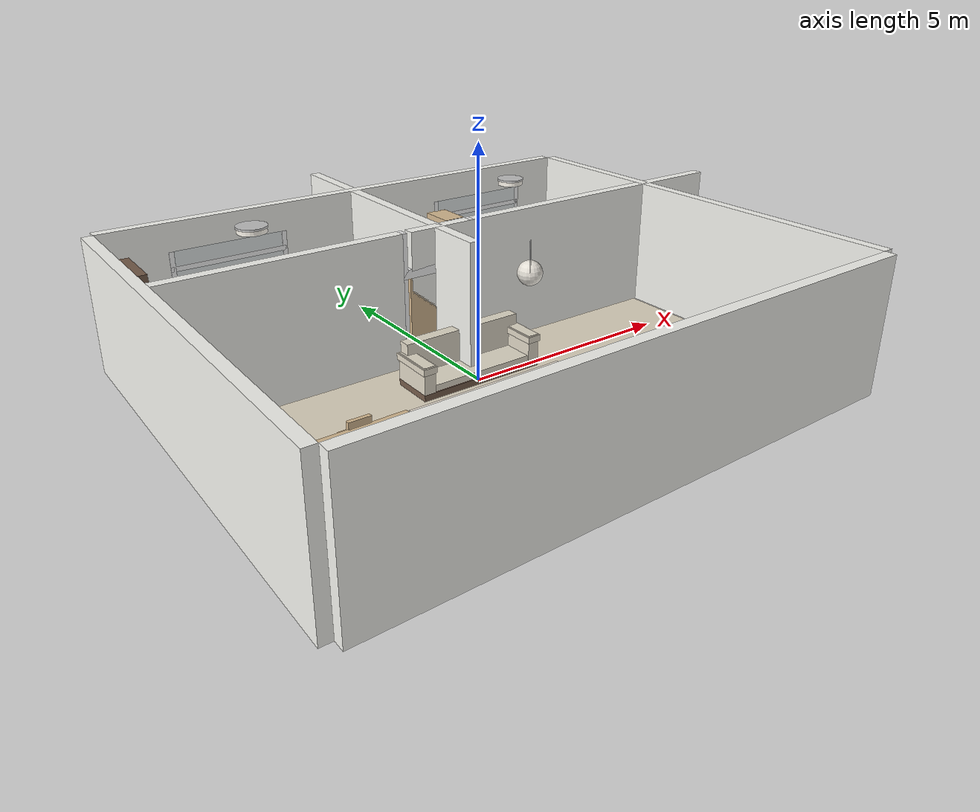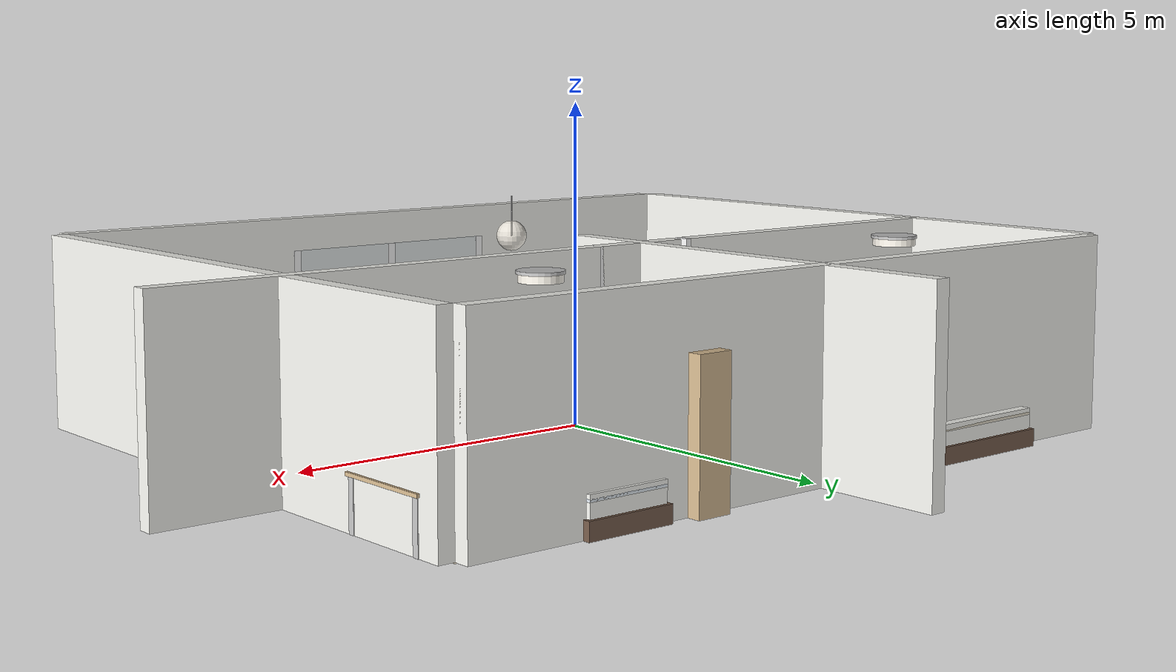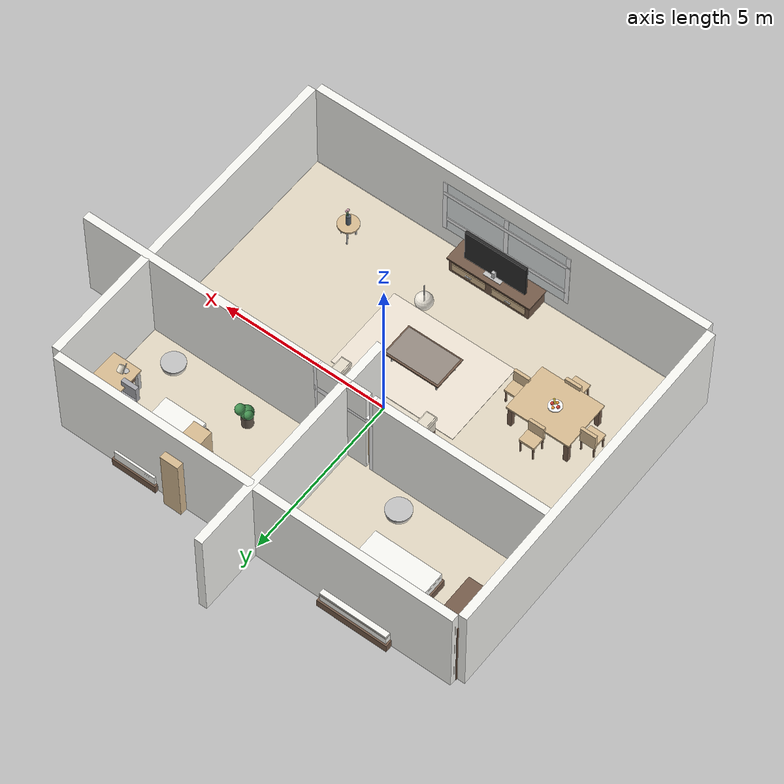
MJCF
<mujoco model="modern_apartment_optimized">
  <compiler angle="degree" coordinate="local" inertiafromgeom="true"/>

  <option timestep="0.005" gravity="0 0 -9.81">
    <flag warmstart="enable"/>
  </option>

  <asset>
    <!-- 现代简约风格材质 -->
    <material name="floor_wood" rgba="0.88 0.84 0.76 1" specular="0.4" shininess="0.3"/>
    <material name="wall_white" rgba="0.97 0.97 0.95 1" specular="0.1" shininess="0.05"/>
    <material name="wallpaper_gray" rgba="0.85 0.85 0.87 1" specular="0.05" shininess="0.02"/>
    <material name="wallpaper_beige" rgba="0.92 0.89 0.84 1" specular="0.05" shininess="0.02"/>
    <material name="wood_natural" rgba="0.84 0.73 0.57 1" specular="0.2" shininess="0.15"/>
    <material name="wood_walnut" rgba="0.46 0.36 0.29 1" specular="0.25" shininess="0.2"/>
    <material name="fabric_beige" rgba="0.89 0.86 0.79 1" specular="0.04" shininess="0.02"/>
    <material name="fabric_gray" rgba="0.66 0.66 0.68 1" specular="0.04" shininess="0.02"/>
    <material name="metal_brushed" rgba="0.76 0.76 0.76 1" specular="0.7" shininess="0.4"/>
    <material name="glass_clear" rgba="0.86 0.93 0.96 0.35" specular="0.9" shininess="0.8"/>
    <material name="black_matte" rgba="0.16 0.16 0.16 1" specular="0.1" shininess="0.05"/>
    <material name="white_matte" rgba="0.99 0.99 0.99 1" specular="0.1" shininess="0.05"/>
    <material name="carpet_cream" rgba="0.93 0.89 0.83 1" specular="0.02" shininess="0.01"/>
    <material name="cushion_linen" rgba="0.92 0.90 0.86 1" specular="0.03" shininess="0.01"/>
  </asset>

  <worldbody>
    <!-- 照明 -->
    <light directional="true" diffuse="0.75 0.75 0.75" specular="0.3 0.3 0.3" pos="0 0 10" dir="0 0 -1"/>
    <light directional="true" diffuse="0.45 0.45 0.45" specular="0.2 0.2 0.2" pos="6 6 8" dir="-1 -1 -1"/>
    <light directional="true" diffuse="0.35 0.35 0.35" specular="0.15 0.15 0.15" pos="-6 -6 8" dir="1 1 -1"/>

    <!-- 地板 (12m x 10m) -->
    <geom name="floor" type="plane" size="6 5 0.1" pos="0 0 0" material="floor_wood"/>

    <!-- ========== 外墙 ========== -->
    <!-- 北墙 -->
    <geom name="wall_north" type="box" size="6 0.12 1.5" pos="0 5.12 1.5" material="wall_white"/>

    <!-- 南墙 -->
    <geom name="wall_south" type="box" size="6 0.12 1.5" pos="0 -5.12 1.5" material="wall_white"/>

    <!-- 东墙 -->
    <geom name="wall_east" type="box" size="0.12 5 1.5" pos="6.12 0 1.5" material="wall_white"/>

    <!-- 西墙 -->
    <geom name="wall_west" type="box" size="0.12 5 1.5" pos="-6.12 0 1.5" material="wall_white"/>

    <!-- ========== 内墙（分隔客厅和卧室）========== -->
    <!-- 水平分隔墙 - 西段（卧室1左侧到门1） -->
    <geom name="wall_h_west" type="box" size="2.6 0.12 1.5" pos="-3.5 1.5 1.5" material="wall_white"/>

    <!-- 门1框架（卧室1门） -->
    <geom name="door1_frame_left" type="box" size="0.05 0.12 1.5" pos="-0.85 1.5 1.5" material="white_matte"/>
    <geom name="door1_frame_right" type="box" size="0.05 0.12 1.5" pos="0.85 1.5 1.5" material="white_matte"/>
    <geom name="door1_frame_top" type="box" size="0.9 0.12 0.1" pos="0 1.5 2.1" material="white_matte"/>
    <geom name="door1_panel" type="box" size="0.75 0.08 0.95" pos="0 1.46 1.05" material="wood_natural"/>
    <geom name="door1_handle" type="cylinder" size="0.02 0.08" pos="0.6 1.38 1.05" material="metal_brushed" euler="0 90 0"/>

    <!-- 水平分隔墙 - 东段（门1到东墙） -->
    <geom name="wall_h_east" type="box" size="4.4 0.12 1.5" pos="3.7 1.5 1.5" material="wall_white"/>

    <!-- 卧室间的垂直分隔墙（仅在北部） -->
    <geom name="wall_v_bedroom" type="box" size="0.12 3.5 1.5" pos="0 3.62 1.5" material="wall_white"/>

    <!-- ========== 壁纸装饰 ========== -->
    <!-- 客厅南墙壁纸 -->
    <geom name="wallpaper_living_south" type="box" size="5.5 0.01 1.3" pos="0 -5.11 1.4" material="wallpaper_gray"/>

    <!-- 卧室1北墙壁纸 -->
    <geom name="wallpaper_bed1_north" type="box" size="2.8 0.01 1.2" pos="-3.2 5.11 1.4" material="wallpaper_beige"/>

    <!-- 卧室2北墙壁纸 -->
    <geom name="wallpaper_bed2_north" type="box" size="2.8 0.01 1.2" pos="3.2 5.11 1.4" material="wallpaper_beige"/>

    <!-- ========== 客厅区域 ========== -->

    <!-- 现代简约沙发（面向南，朝向电视） -->
    <body name="sofa" pos="0 0.3 0">
      <!-- 沙发底座框架 -->
      <geom type="box" size="1.45 0.48 0.07" pos="0 0 0.07" material="wood_walnut"/>
      <!-- 沙发薄坐垫 -->
      <geom type="box" size="1.40 0.45 0.07" pos="0 0 0.21" material="fabric_beige"/>
      <!-- 沙发靠背 -->
      <geom type="box" size="1.40 0.13 0.42" pos="0 0.35 0.56" material="fabric_beige"/>
      <!-- 靠背软包 -->
      <geom type="box" size="1.35 0.09 0.37" pos="0 0.39 0.56" material="fabric_gray"/>
      <!-- 左扶手 -->
      <geom type="box" size="0.13 0.48 0.30" pos="-1.32 0 0.44" material="fabric_beige"/>
      <geom type="box" size="0.16 0.51 0.07" pos="-1.32 0 0.65" material="fabric_beige"/>
      <!-- 右扶手 -->
      <geom type="box" size="0.13 0.48 0.30" pos="1.32 0 0.44" material="fabric_beige"/>
      <geom type="box" size="0.16 0.51 0.07" pos="1.32 0 0.65" material="fabric_beige"/>
      <!-- 薄抱枕 -->
      <geom type="box" size="0.30 0.07 0.30" pos="-0.75 0.38 0.36" material="cushion_linen"/>
      <geom type="box" size="0.30 0.07 0.30" pos="0 0.38 0.36" material="cushion_linen"/>
      <geom type="box" size="0.30 0.07 0.30" pos="0.75 0.38 0.36" material="cushion_linen"/>
    </body>

    <!-- 地毯（在茶几下） -->
    <geom name="carpet" type="box" size="1.9 1.3 0.008" pos="0 -1.6 0.008" material="carpet_cream"/>

    <!-- 现代茶几 -->
    <body name="coffee_table" pos="0 -1.6 0">
      <!-- 桌面 -->
      <geom type="box" size="0.85 0.52 0.025" pos="0 0 0.40" material="wood_walnut"/>
      <!-- 玻璃层 -->
      <geom type="box" size="0.80 0.47 0.01" pos="0 0 0.445" material="glass_clear"/>
      <!-- 金属腿 -->
      <geom type="cylinder" size="0.025 0.18" pos="-0.70 -0.37 0.18" material="metal_brushed"/>
      <geom type="cylinder" size="0.025 0.18" pos="0.70 -0.37 0.18" material="metal_brushed"/>
      <geom type="cylinder" size="0.025 0.18" pos="-0.70 0.37 0.18" material="metal_brushed"/>
      <geom type="cylinder" size="0.025 0.18" pos="0.70 0.37 0.18" material="metal_brushed"/>
    </body>

    <!-- 电视柜（靠南墙，留出间隙不重合） -->
    <body name="tv_stand" pos="0 -4.7 0">
      <!-- 柜体 -->
      <geom type="box" size="1.25 0.38 0.24" pos="0 0 0.24" material="wood_walnut"/>
      <!-- 台面 -->
      <geom type="box" size="1.30 0.42 0.025" pos="0 0 0.505" material="wood_walnut"/>
      <!-- 抽屉面板 -->
      <geom type="box" size="0.52 0.02 0.13" pos="-0.62 0.38 0.24" material="wood_natural"/>
      <geom type="box" size="0.52 0.02 0.13" pos="0.62 0.38 0.24" material="wood_natural"/>
      <!-- 金属拉手 -->
      <geom type="box" size="0.09 0.015 0.015" pos="-0.62 0.42 0.24" material="metal_brushed"/>
      <geom type="box" size="0.09 0.015 0.015" pos="0.62 0.42 0.24" material="metal_brushed"/>
    </body>

    <!-- 现代电视 -->
    <body name="tv" pos="0 -4.6 0.53">
      <!-- 电视屏幕 -->
      <geom type="box" size="0.95 0.04 0.54" pos="0 0 0.54" material="black_matte"/>
      <!-- 显示区域 -->
      <geom type="box" size="0.90 0.02 0.50" pos="0 -0.02 0.54" rgba="0.12 0.14 0.17 1"/>
      <!-- 底座 -->
      <geom type="box" size="0.27 0.17 0.02" pos="0 0 -0.01" material="metal_brushed"/>
      <geom type="box" size="0.045 0.12 0.11" pos="0 0 0.10" material="metal_brushed"/>
    </body>

    <!-- 餐桌（客厅西侧空余空间） -->
    <body name="dining_table" pos="-3.6 -2.2 0">
      <!-- 桌面 -->
      <geom type="box" size="0.95 0.75 0.032" pos="0 0 0.75" material="wood_natural"/>
      <!-- 桌腿 -->
      <geom type="box" size="0.065 0.065 0.36" pos="-0.85 -0.65 0.36" material="wood_walnut"/>
      <geom type="box" size="0.065 0.065 0.36" pos="0.85 -0.65 0.36" material="wood_walnut"/>
      <geom type="box" size="0.065 0.065 0.36" pos="-0.85 0.65 0.36" material="wood_walnut"/>
      <geom type="box" size="0.065 0.065 0.36" pos="0.85 0.65 0.36" material="wood_walnut"/>
    </body>

    <!-- 餐椅1（桌子西侧） -->
    <body name="chair1" pos="-4.75 -2.2 0">
      <geom type="box" size="0.23 0.23 0.04" pos="0 0 0.48" material="wood_natural"/>
      <geom type="box" size="0.23 0.045 0.26" pos="0 0.19 0.66" material="wood_natural"/>
      <geom type="cylinder" size="0.026 0.23" pos="-0.19 -0.19 0.23" material="wood_walnut"/>
      <geom type="cylinder" size="0.026 0.23" pos="0.19 -0.19 0.23" material="wood_walnut"/>
      <geom type="cylinder" size="0.026 0.23" pos="-0.19 0.19 0.23" material="wood_walnut"/>
      <geom type="cylinder" size="0.026 0.23" pos="0.19 0.19 0.23" material="wood_walnut"/>
    </body>

    <!-- 餐椅2（桌子东侧） -->
    <body name="chair2" pos="-2.45 -2.2 0">
      <geom type="box" size="0.23 0.23 0.04" pos="0 0 0.48" material="wood_natural"/>
      <geom type="box" size="0.23 0.045 0.26" pos="0 -0.19 0.66" material="wood_natural"/>
      <geom type="cylinder" size="0.026 0.23" pos="-0.19 -0.19 0.23" material="wood_walnut"/>
      <geom type="cylinder" size="0.026 0.23" pos="0.19 -0.19 0.23" material="wood_walnut"/>
      <geom type="cylinder" size="0.026 0.23" pos="-0.19 0.19 0.23" material="wood_walnut"/>
      <geom type="cylinder" size="0.026 0.23" pos="0.19 0.19 0.23" material="wood_walnut"/>
    </body>

    <!-- 餐椅3（桌子南侧） -->
    <body name="chair3" pos="-3.6 -3.15 0">
      <geom type="box" size="0.23 0.23 0.04" pos="0 0 0.48" material="wood_natural"/>
      <geom type="box" size="0.23 0.045 0.26" pos="0 0.19 0.66" material="wood_natural"/>
      <geom type="cylinder" size="0.026 0.23" pos="-0.19 -0.19 0.23" material="wood_walnut"/>
      <geom type="cylinder" size="0.026 0.23" pos="0.19 -0.19 0.23" material="wood_walnut"/>
      <geom type="cylinder" size="0.026 0.23" pos="-0.19 0.19 0.23" material="wood_walnut"/>
      <geom type="cylinder" size="0.026 0.23" pos="0.19 0.19 0.23" material="wood_walnut"/>
    </body>

    <!-- 餐椅4（桌子北侧） -->
    <body name="chair4" pos="-3.6 -1.25 0">
      <geom type="box" size="0.23 0.23 0.04" pos="0 0 0.48" material="wood_natural"/>
      <geom type="box" size="0.23 0.045 0.26" pos="0 -0.19 0.66" material="wood_natural"/>
      <geom type="cylinder" size="0.026 0.23" pos="-0.19 -0.19 0.23" material="wood_walnut"/>
      <geom type="cylinder" size="0.026 0.23" pos="0.19 -0.19 0.23" material="wood_walnut"/>
      <geom type="cylinder" size="0.026 0.23" pos="-0.19 0.19 0.23" material="wood_walnut"/>
      <geom type="cylinder" size="0.026 0.23" pos="0.19 0.19 0.23" material="wood_walnut"/>
    </body>

    <!-- 餐桌上的水果盘 -->
    <body name="fruit_bowl" pos="-3.6 -2.2 0.782">
      <!-- 盘子 -->
      <geom type="cylinder" size="0.19 0.032" pos="0 0 0" material="white_matte"/>
      <!-- 苹果 -->
      <geom type="sphere" size="0.047" pos="-0.09 0 0.047" rgba="0.86 0.26 0.21 1"/>
      <geom type="sphere" size="0.047" pos="0.09 0 0.047" rgba="0.86 0.26 0.21 1"/>
      <!-- 橙子 -->
      <geom type="sphere" size="0.042" pos="0 -0.09 0.042" rgba="0.96 0.61 0.21 1"/>
      <geom type="sphere" size="0.042" pos="0 0.09 0.042" rgba="0.96 0.61 0.21 1"/>
      <!-- 香蕉 -->
      <geom type="capsule" size="0.026 0.065" pos="0.06 -0.06 0.09" rgba="0.96 0.86 0.31 1" euler="22 32 47"/>
    </body>

    <!-- 边几（客厅东侧） -->
    <body name="side_table" pos="3.9 -3.6 0">
      <!-- 桌面 -->
      <geom type="cylinder" size="0.30 0.026" pos="0 0 0.54" material="wood_natural"/>
      <!-- 金属腿（三脚） -->
      <geom type="cylinder" size="0.022 0.26" pos="0.22 0 0.26" material="metal_brushed" euler="5 0 0"/>
      <geom type="cylinder" size="0.022 0.26" pos="-0.11 0.19 0.26" material="metal_brushed" euler="5 0 120"/>
      <geom type="cylinder" size="0.022 0.26" pos="-0.11 -0.19 0.26" material="metal_brushed" euler="5 0 240"/>
    </body>

    <!-- 装饰花瓶（边几上） -->
    <body name="vase" pos="3.9 -3.6 0.566">
      <!-- 花瓶 -->
      <geom type="cylinder" size="0.065 0.16" pos="0 0 0.16" rgba="0.32 0.37 0.42 1"/>
      <!-- 花茎 -->
      <geom type="cylinder" size="0.009 0.13" pos="0 0 0.44" rgba="0.22 0.52 0.22 1"/>
      <geom type="cylinder" size="0.009 0.11" pos="0.035 0.025 0.42" rgba="0.22 0.52 0.22 1"/>
      <!-- 花朵 -->
      <geom type="sphere" size="0.038" pos="0 0 0.57" rgba="0.92 0.72 0.77 1"/>
      <geom type="sphere" size="0.032" pos="0.035 0.025 0.53" rgba="0.92 0.72 0.77 1"/>
    </body>

    <!-- ========== 卧室1 (西北区域) ========== -->

    <!-- 双人床（床头靠北墙） -->
    <body name="bed1" pos="-3.2 4.3 0">
      <!-- 床架 -->
      <geom type="box" size="1.05 1.15 0.13" pos="0 0 0.13" material="wood_walnut"/>
      <!-- 床垫 -->
      <geom type="box" size="1.00 1.10 0.19" pos="0 0 0.38" rgba="0.97 0.97 0.95 1"/>
      <!-- 床单 -->
      <geom type="box" size="1.00 1.10 0.02" pos="0 0 0.49" material="fabric_beige"/>
      <!-- 床头板（靠墙） -->
      <geom type="box" size="1.05 0.09 0.62" pos="0 0.67 0.74" material="wood_walnut"/>
      <geom type="box" size="1.00 0.13 0.52" pos="0 0.64 0.74" material="fabric_gray"/>
      <!-- 枕头 -->
      <geom type="box" size="0.32 0.19 0.09" pos="-0.48 0.45 0.56" rgba="0.99 0.99 0.99 1"/>
      <geom type="box" size="0.32 0.19 0.09" pos="0.48 0.45 0.56" rgba="0.99 0.99 0.99 1"/>
    </body>

    <!-- 床头柜1（左侧，紧靠床） -->
    <body name="nightstand1" pos="-4.45 4.3 0">
      <!-- 柜体 -->
      <geom type="box" size="0.32 0.35 0.30" pos="0 0 0.30" material="wood_natural"/>
      <!-- 台面 -->
      <geom type="box" size="0.34 0.37 0.026" pos="0 0 0.626" material="wood_walnut"/>
      <!-- 抽屉 -->
      <geom type="box" size="0.28 0.02 0.11" pos="0 0.35 0.37" material="wood_walnut"/>
      <geom type="box" size="0.06 0.012 0.012" pos="0 0.39 0.37" material="metal_brushed"/>
      <!-- 台灯 -->
      <geom type="cylinder" size="0.09 0.022" pos="0 0 0.67" material="metal_brushed"/>
      <geom type="cylinder" size="0.017 0.19" pos="0 0 0.88" material="metal_brushed"/>
      <geom type="sphere" size="0.11" pos="0 0 1.09" rgba="0.99 0.97 0.91 0.82"/>
    </body>

    <!-- 床头柜2（右侧，紧靠床） -->
    <body name="nightstand2" pos="-1.95 4.3 0">
      <geom type="box" size="0.32 0.35 0.30" pos="0 0 0.30" material="wood_natural"/>
      <geom type="box" size="0.34 0.37 0.026" pos="0 0 0.626" material="wood_walnut"/>
      <geom type="box" size="0.28 0.02 0.11" pos="0 0.35 0.37" material="wood_walnut"/>
      <geom type="box" size="0.06 0.012 0.012" pos="0 0.39 0.37" material="metal_brushed"/>
      <!-- 台灯 -->
      <geom type="cylinder" size="0.09 0.022" pos="0 0 0.67" material="metal_brushed"/>
      <geom type="cylinder" size="0.017 0.19" pos="0 0 0.88" material="metal_brushed"/>
      <geom type="sphere" size="0.11" pos="0 0 1.09" rgba="0.99 0.97 0.91 0.82"/>
    </body>

    <!-- 衣柜（卧室1，靠西墙但不重合） -->
    <body name="wardrobe1" pos="-5.7 4.4 0">
      <!-- 柜体 -->
      <geom type="box" size="0.32 0.65 1.20" pos="0 0 1.20" material="wood_walnut"/>
      <!-- 左门 -->
      <geom type="box" size="0.032 0.30 1.12" pos="0.30 -0.32 1.20" material="wood_natural"/>
      <!-- 右门 -->
      <geom type="box" size="0.032 0.30 1.12" pos="0.30 0.32 1.20" material="wood_natural"/>
      <!-- 门把手 -->
      <geom type="cylinder" size="0.017 0.065" pos="0.34 -0.48 1.20" material="metal_brushed" euler="0 90 0"/>
      <geom type="cylinder" size="0.017 0.065" pos="0.34 0.48 1.20" material="metal_brushed" euler="0 90 0"/>
    </body>

    <!-- ========== 卧室2 (东北区域) ========== -->

    <!-- 单人床（床头靠北墙） -->
    <body name="bed2" pos="3.6 4.3 0">
      <!-- 床架 -->
      <geom type="box" size="0.68 1.05 0.13" pos="0 0 0.13" material="wood_walnut"/>
      <!-- 床垫 -->
      <geom type="box" size="0.63 1.00 0.19" pos="0 0 0.38" rgba="0.97 0.97 0.95 1"/>
      <!-- 床单 -->
      <geom type="box" size="0.63 1.00 0.02" pos="0 0 0.49" rgba="0.89 0.92 0.95 1"/>
      <!-- 床头板（靠墙） -->
      <geom type="box" size="0.68 0.09 0.58" pos="0 0.64 0.71" material="wood_walnut"/>
      <geom type="box" size="0.63 0.13 0.48" pos="0 0.61 0.71" material="fabric_gray"/>
      <!-- 枕头 -->
      <geom type="box" size="0.30 0.19 0.09" pos="0 0.42 0.56" rgba="0.99 0.99 0.99 1"/>
    </body>

    <!-- 书桌（卧室2，靠东墙但不重合） -->
    <body name="desk" pos="5.7 3.9 0">
      <!-- 桌面 -->
      <geom type="box" size="0.58 0.75 0.026" pos="0 0 0.75" material="wood_natural"/>
      <!-- 桌腿 -->
      <geom type="box" size="0.052 0.052 0.36" pos="-0.50 -0.67 0.36" material="metal_brushed"/>
      <geom type="box" size="0.052 0.052 0.36" pos="0.50 -0.67 0.36" material="metal_brushed"/>
      <geom type="box" size="0.052 0.052 0.36" pos="-0.50 0.67 0.36" material="metal_brushed"/>
      <geom type="box" size="0.052 0.052 0.36" pos="0.50 0.67 0.36" material="metal_brushed"/>
      <!-- 抽屉 -->
      <geom type="box" size="0.48 0.65 0.13" pos="0 0 0.52" material="wood_walnut"/>
    </body>

    <!-- 书桌椅 -->
    <body name="desk_chair" pos="5.0 3.9 0">
      <!-- 座位 -->
      <geom type="cylinder" size="0.25 0.052" pos="0 0 0.49" material="fabric_gray"/>
      <!-- 靠背 -->
      <geom type="box" size="0.23 0.065 0.27" pos="0 -0.17 0.70" material="fabric_gray"/>
      <!-- 支撑杆 -->
      <geom type="cylinder" size="0.032 0.23" pos="0 0 0.23" material="metal_brushed"/>
      <!-- 底座 -->
      <geom type="cylinder" size="0.30 0.022" pos="0 0 0.044" material="metal_brushed"/>
    </body>

    <!-- 书桌台灯 -->
    <body name="desk_lamp" pos="5.4 3.4 0.776">
      <!-- 底座 -->
      <geom type="cylinder" size="0.075 0.017" pos="0 0 0" material="metal_brushed"/>
      <!-- 灯臂 -->
      <geom type="cylinder" size="0.013 0.16" pos="0 0.055 0.16" material="metal_brushed" euler="32 0 0"/>
      <!-- 灯罩 -->
      <geom type="cylinder" size="0.09 0.09" pos="0 0.17 0.30" rgba="0.99 0.97 0.91 0.87" euler="47 0 0"/>
    </body>

    <!-- 书架（卧室2） -->
    <body name="bookshelf" pos="2.3 4.8 0">
      <!-- 主框架 -->
      <geom type="box" size="0.27 0.65 1.05" pos="0 0 1.05" material="wood_natural"/>
      <!-- 隔板 -->
      <geom type="box" size="0.25 0.63 0.022" pos="0 0 0.38" material="wood_walnut"/>
      <geom type="box" size="0.25 0.63 0.022" pos="0 0 0.75" material="wood_walnut"/>
      <geom type="box" size="0.25 0.63 0.022" pos="0 0 1.12" material="wood_walnut"/>
      <geom type="box" size="0.25 0.63 0.022" pos="0 0 1.49" material="wood_walnut"/>
      <geom type="box" size="0.25 0.63 0.022" pos="0 0 1.86" material="wood_walnut"/>
      <!-- 书籍 -->
      <geom type="box" size="0.19 0.032 0.19" pos="0 -0.32 0.57" rgba="0.32 0.42 0.62 1"/>
      <geom type="box" size="0.19 0.032 0.16" pos="0 -0.22 0.555" rgba="0.62 0.32 0.32 1"/>
      <geom type="box" size="0.19 0.032 0.21" pos="0 -0.11 0.58" rgba="0.32 0.62 0.42 1"/>
      <geom type="box" size="0.19 0.032 0.17" pos="0 0.17 0.94" rgba="0.52 0.52 0.32 1"/>
      <geom type="box" size="0.19 0.032 0.20" pos="0 0.32 0.945" rgba="0.42 0.32 0.52 1"/>
    </body>

    <!-- 装饰植物（卧室2角落） -->
    <body name="plant" pos="2.4 2.4 0">
      <!-- 花盆 -->
      <geom type="cylinder" size="0.16 0.19" pos="0 0 0.19" rgba="0.42 0.37 0.32 1"/>
      <!-- 植物 -->
      <geom type="sphere" size="0.19" pos="0 0 0.51" rgba="0.27 0.57 0.32 1"/>
      <geom type="sphere" size="0.15" pos="0.13 0.09 0.62" rgba="0.27 0.57 0.32 1"/>
      <geom type="sphere" size="0.13" pos="-0.11 0.07 0.57" rgba="0.27 0.57 0.32 1"/>
    </body>

    <!-- ========== 窗户 ========== -->

    <!-- 客厅窗户（南墙，不与墙重合） -->
    <body name="window_living" pos="0 -5.04 1.5">
      <!-- 玻璃 -->
      <geom type="box" size="1.9 0.045 0.95" pos="0 0 0" material="glass_clear"/>
      <!-- 窗框 -->
      <geom type="box" size="1.95 0.055 0.065" pos="0 0 -0.51" material="white_matte"/>
      <geom type="box" size="1.95 0.055 0.065" pos="0 0 0.51" material="white_matte"/>
      <geom type="box" size="0.065 0.055 0.95" pos="-1.9 0 0" material="white_matte"/>
      <geom type="box" size="0.065 0.055 0.95" pos="1.9 0 0" material="white_matte"/>
      <geom type="box" size="0.065 0.055 0.95" pos="0 0 0" material="white_matte"/>
    </body>

    <!-- 卧室1窗户（北墙，不与墙重合） -->
    <body name="window_bed1" pos="-3.2 5.04 1.5">
      <geom type="box" size="1.3 0.045 0.85" pos="0 0 0" material="glass_clear"/>
      <geom type="box" size="1.35 0.055 0.055" pos="0 0 -0.45" material="white_matte"/>
      <geom type="box" size="1.35 0.055 0.055" pos="0 0 0.45" material="white_matte"/>
      <geom type="box" size="0.055 0.055 0.85" pos="-1.3 0 0" material="white_matte"/>
      <geom type="box" size="0.055 0.055 0.85" pos="1.3 0 0" material="white_matte"/>
    </body>

    <!-- 卧室2窗户（北墙，不与墙重合） -->
    <body name="window_bed2" pos="3.6 5.04 1.5">
      <geom type="box" size="1.3 0.045 0.85" pos="0 0 0" material="glass_clear"/>
      <geom type="box" size="1.35 0.055 0.055" pos="0 0 -0.45" material="white_matte"/>
      <geom type="box" size="1.35 0.055 0.055" pos="0 0 0.45" material="white_matte"/>
      <geom type="box" size="0.055 0.055 0.85" pos="-1.3 0 0" material="white_matte"/>
      <geom type="box" size="0.055 0.055 0.85" pos="1.3 0 0" material="white_matte"/>
    </body>

    <!-- ========== 装饰元素 ========== -->

    <!-- 墙面装饰画（客厅） -->
    <geom name="wall_art1" type="box" size="0.55 0.017 0.38" pos="-4.6 -5.09 1.65" rgba="0.87 0.90 0.92 1"/>
    <geom name="wall_art1_frame" type="box" size="0.57 0.022 0.40" pos="-4.6 -5.11 1.65" material="black_matte"/>

    <!-- 墙面装饰画（卧室1） -->
    <geom name="wall_art2" type="box" size="0.43 0.017 0.32" pos="-3.2 5.09 1.75" rgba="0.92 0.87 0.82 1"/>
    <geom name="wall_art2_frame" type="box" size="0.45 0.022 0.34" pos="-3.2 5.11 1.75" material="wood_walnut"/>

    <!-- 吊灯（客厅中央） -->
    <body name="pendant_light_living" pos="0 -1.6 2.85">
      <geom type="cylinder" size="0.012 0.32" pos="0 0 0.32" material="metal_brushed"/>
      <geom type="sphere" size="0.24" pos="0 0 0" rgba="0.99 0.97 0.93 0.87"/>
    </body>

    <!-- 吸顶灯（卧室1） -->
    <body name="ceiling_light_bed1" pos="-3.2 3.6 2.97">
      <geom type="cylinder" size="0.32 0.065" pos="0 0 0" rgba="0.99 0.97 0.93 0.92"/>
      <geom type="cylinder" size="0.34 0.022" pos="0 0 0.065" material="metal_brushed"/>
    </body>

    <!-- 吸顶灯（卧室2） -->
    <body name="ceiling_light_bed2" pos="3.6 3.6 2.97">
      <geom type="cylinder" size="0.30 0.065" pos="0 0 0" rgba="0.99 0.97 0.93 0.92"/>
      <geom type="cylinder" size="0.32 0.022" pos="0 0 0.065" material="metal_brushed"/>
    </body>

  </worldbody>
</mujoco>
